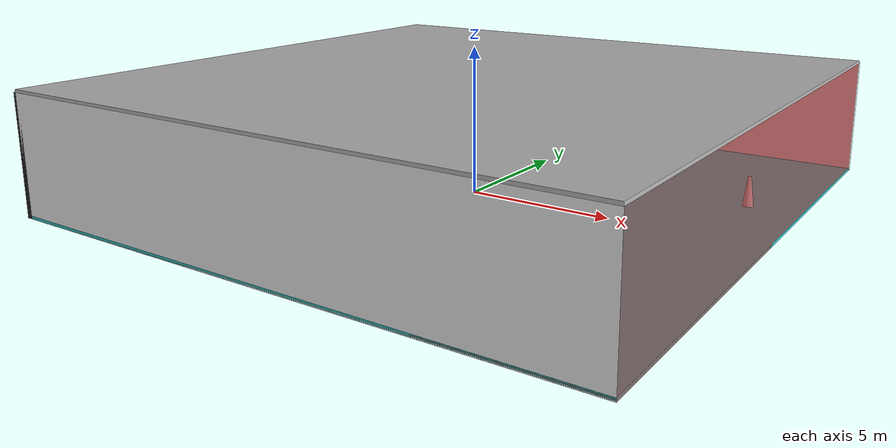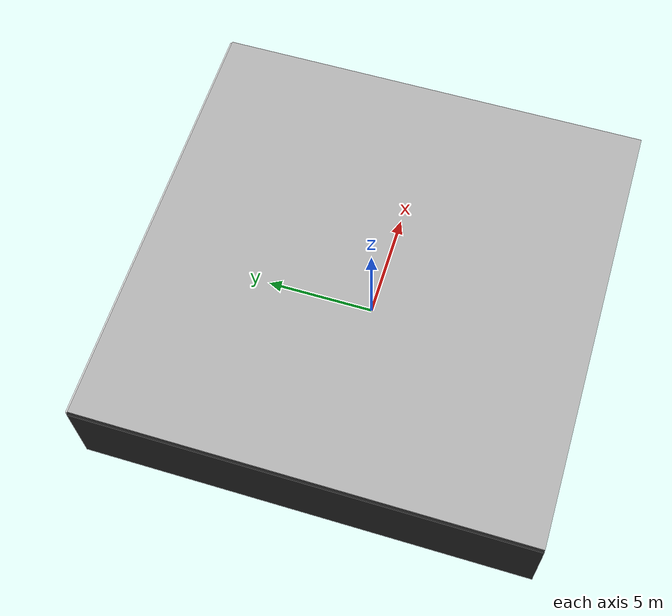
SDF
<sdf version="1.4">
 <world name="default">
  <physics type="ode">
   <max_step_size>0.001</max_step_size>
   <real_time_factor>1</real_time_factor>
   <real_time_update_rate>1000</real_time_update_rate>
   <gravity>0 0 -9.8</gravity>
  </physics>
  <scene><ambient>0.4 0.4 0.4 1</ambient><background>0.7 0.7 0.7 1</background><shadows>1</shadows></scene>
  <model name="Surrounding">
   <static>1</static>
   <link name="Ceiling">
    <collision name="Ceiling_Collision"><geometry><box><size>20 20 0.1</size></box></geometry></collision>
    <visual name="Ceiling_Visual">
     <geometry><box><size>20 20 0.1</size></box></geometry>
     <material>
      <script><uri>file://media/materials/scripts/gazebo.material</uri><name>Gazebo/Pioneer2Body</name></script>
     </material>
    </visual>
    <pose>0 0 4.05 0 0 0</pose>
   </link>
   <link name="Wall_South">
    <collision name="Wall_South_Collision">
     <geometry><box><size>20 0 4</size></box></geometry>
     <pose>0 0 2 0 -0 0</pose>
    </collision>
    <visual name="Wall_South_Visual">
     <pose>0 0 2 0 -0 0</pose>
     <geometry><box><size>20 0 4</size></box></geometry>
     <material>
      <script><uri>file://media/materials/scripts/gazebo.material</uri><name>Gazebo/WhiteGlow</name></script>
     </material>
    </visual>
    <velocity_decay><linear>0</linear><angular>0</angular></velocity_decay>
    <pose>0 -10 0 0 -0 0</pose>
   </link>
   <link name="Wall_East">
    <collision name="Wall_21_Collision">
     <geometry><box><size>20 0 4</size></box></geometry>
     <pose>0 0 2 0 -0 0</pose>
    </collision>
    <visual name="Wall_21_Visual">
     <pose>0 0 2 0 -0 0</pose>
     <geometry><box><size>20 0 4</size></box></geometry>
     <material>
      <script><uri>file://media/materials/scripts/gazebo.material</uri><name>Gazebo/RedTransparent</name></script>
     </material>
    </visual>
    <velocity_decay><linear>0</linear><angular>0</angular></velocity_decay>
    <pose>10 0 0 0 -0 1.5708</pose>
   </link>
   <link name="Wall_North">
    <collision name="Wall_22_Collision">
     <geometry><box><size>20 0.2 4</size></box></geometry>
     <pose>0 0 2 0 -0 0</pose>
    </collision>
    <visual name="Wall_22_Visual">
     <pose>0 0 2 0 -0 0</pose>
     <geometry><box><size>20 0.2 4</size></box></geometry>
     <material>
      <script><uri>file://media/materials/scripts/gazebo.material</uri><name>Gazebo/WhiteGlow</name></script>
     </material>
    </visual>
    <velocity_decay><linear>0</linear><angular>0</angular></velocity_decay>
    <pose>0 10 0 0 -0 0</pose>
   </link>
   <link name="Wall_West">
    <collision name="Wall_23_Collision">
     <geometry><box><size>20 0.2 4</size></box></geometry>
     <pose>0 0 2 0 -0 0</pose>
    </collision>
    <visual name="Wall_23_Visual">
     <pose>0 0 2 0 -0 0</pose>
     <geometry><box><size>20 0.2 4</size></box></geometry>
     <material>
      <script><uri>file://media/materials/scripts/gazebo.material</uri><name>Gazebo/Black</name></script>
     </material>
    </visual>
    <velocity_decay><linear>0</linear><angular>0</angular></velocity_decay>
    <pose>-10 0 0 0 0 -1.5708</pose>
   </link>
   <link name="Ground_link">
    <collision name="collision">
     <pose>0 0 .05 0 -0 0</pose>
     <geometry><box><size>20 20 0.1</size></box></geometry>
    </collision>
    <visual name="visual">
     <pose>0 0 .05 0 -0 0</pose>
     <geometry><box><size>20 20 0.1</size></box></geometry>
     <material>
      <script><uri>file://media/materials/scripts/gazebo.material</uri><name>Gazebo/Turquoise</name></script>
     </material>
    </visual>
   </link>
   <static>1</static>
  </model>
  <spherical_coordinates>
   <surface_model>EARTH_WGS84</surface_model>
   <latitude_deg>0</latitude_deg>
   <longitude_deg>0</longitude_deg>
   <elevation>0</elevation>
   <heading_deg>0</heading_deg>
  </spherical_coordinates>
  <light name="lightball_0" type="diffuse">
   <diffuse>0.8 0.8 0.8 1</diffuse>
   <specular>0.2 0.2 0.2 1</specular>
   <attenuation>
    <range>100</range>
    <constant>0.7</constant>
    <linear>0.01</linear>
    <quadratic>0.001</quadratic>
   </attenuation>
   <direction>-0.5 0.1 -0.9</direction>
   <pose>5.84981699702 2.52299114824 1.17164686058 0 0 0</pose>
  </light>
  <light name="lightball_1" type="diffuse">
   <diffuse>0.8 0.8 0.8 1</diffuse>
   <specular>0.2 0.2 0.2 1</specular>
   <attenuation>
    <range>100</range>
    <constant>0.7</constant>
    <linear>0.01</linear>
    <quadratic>0.001</quadratic>
   </attenuation>
   <direction>-0.5 0.1 -0.9</direction>
   <pose>1.41247615391 6.1457489419 2.65353713141 0 0 0</pose>
  </light>
  <light name="lightball_2" type="diffuse">
   <diffuse>0.8 0.8 0.8 1</diffuse>
   <specular>0.2 0.2 0.2 1</specular>
   <attenuation>
    <range>100</range>
    <constant>0.7</constant>
    <linear>0.01</linear>
    <quadratic>0.001</quadratic>
   </attenuation>
   <direction>-0.5 0.1 -0.9</direction>
   <pose>4.50450357683 -4.56632048689 1.71623090656 0 0 0</pose>
  </light>
  <include>
   <uri>model://textured_shapes</uri>
   <pose>-6.69231469914 -2.37593322108 0 0 0 0.677218179703</pose>
  </include>
  <include>
   <uri>model://construction_cone</uri>
   <pose>-6.64892291892 4.89437731163 0 0 0 0.17686598729</pose>
  </include>
  <include><uri>model://cabinet</uri><pose>-4.41244604144 3.95913152304 0 0 0 0.185404287899</pose></include>
  <include>
   <uri>model://textured_shapes</uri>
   <pose>1.55764011312 -3.85240940002 0 0 0 0.30736974765</pose>
  </include>
  <include>
   <uri>model://construction_cone</uri>
   <pose>8.30730657161 3.41461839075 0 0 0 1.23631931411</pose>
  </include>
 </world>
</sdf>

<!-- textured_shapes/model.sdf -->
<sdf version="1.6">
  <model name="textured_shapes">
    <pose>0 0 0.5 0 0 0</pose>
    <link name="box">
      <pose>0 -1.5 0 0 0 0</pose>
      <collision name="collision">
        <geometry>
          <box>
            <size>1 1 1</size>
          </box>
        </geometry>
      </collision>
      <visual name="visual">
        <geometry>
          <box>
            <size>1 1 1</size>
          </box>
        </geometry>
        <material>
          <script>
            <uri>model://../model_source/models/textured_shapes/materials/scripts</uri>
            <uri>model://../model_source/models/textured_shapes/materials/textures</uri>
            <name>TexturedShape/Squares</name>
          </script>
        </material>
      </visual>
    </link>
    <link name="sphere">
      <collision name="collision">
        <geometry>
          <sphere>
            <radius>0.5</radius>
          </sphere>
        </geometry>
      </collision>
      <visual name="visual">
        <geometry>
          <sphere>
            <radius>0.5</radius>
          </sphere>
        </geometry>
        <material>
          <script>
            <uri>model://../model_source/models/textured_shapes/materials/scripts</uri>
            <uri>model://../model_source/models/textured_shapes/materials/textures</uri>
            <name>TexturedShape/Squares</name>
          </script>
        </material>
      </visual>
    </link>
    <link name="cylinder">
      <pose>0 1.5 0 0 0 0</pose>
      <collision name="collision">
        <geometry>
          <cylinder>
            <radius>0.5</radius>
            <length>1</length>
          </cylinder>
        </geometry>
      </collision>
      <visual name="visual">
        <geometry>
          <cylinder>
            <radius>0.5</radius>
            <length>1</length>
          </cylinder>
        </geometry>
        <material>
          <script>
            <uri>model://../model_source/models/textured_shapes/materials/scripts</uri>
            <uri>model://../model_source/models/textured_shapes/materials/textures</uri>
            <name>TexturedShape/Squares</name>
          </script>
        </material>
      </visual>
    </link>
  </model>
</sdf>

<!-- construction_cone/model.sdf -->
<sdf version="1.5">
  <model name="Construction Cone">
    <link name="link">
      <collision name="collision">
        <geometry>
          <mesh>
            <scale>10 10 10</scale>
            <uri>file://isr-testbed/construction_cone/meshes/construction_cone.dae</uri>
          </mesh>
        </geometry>
      </collision>
      <visual name="visual">
        <geometry>
          <mesh>
            <scale>10 10 10</scale>
            <uri>file://isr-testbed/construction_cone/meshes/construction_cone.dae</uri>
          </mesh>
        </geometry>
      </visual>
    </link>
  </model>
</sdf>

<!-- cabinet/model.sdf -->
<sdf version="1.5">
  <model name="cabinet">
    <static>true</static>
    <link name="cabinet_bottom_plate">
      <inertial>
        <pose>0 0 -1 0 0 0</pose>
        <inertia>
          <ixx>2.050000</ixx>
          <ixy>0</ixy>
          <ixz>0</ixz>
          <iyy>2.050000</iyy>
          <iyz>0</iyz>
          <izz>2.050000</izz>
        </inertia>
        <mass>25.000000</mass>
      </inertial>
      <collision name="cabinet_bottom_plate_geom">
        <pose>0 0 0.010000 0 0 0</pose>
        <geometry>
          <box>
            <size>0.450000 0.450000 0.020000</size>
          </box>
        </geometry>
      </collision>
      <visual name="cabinet_bottom_plate_geom_visual">
        <pose>0 0 0.010000 0 0 0</pose>
        <geometry>
          <box>
            <size>0.450000 0.450000 0.020000</size>
          </box>
        </geometry>
        <material>
          <script>
            <uri>model://media/materials/scripts/gazebo.material</uri>
            <name>Gazebo/Wood</name>
          </script>
        </material>
      </visual>
      <collision name="cabinet_bottom_plate_geom_cabinet_back_plate">
        <pose>0.235000 0 0.510000 0 0 0</pose>
        <geometry>
          <box>
            <size>0.020000 0.450000 1.020000</size>
          </box>
        </geometry>
      </collision>
      <visual name="cabinet_bottom_plate_geom_cabinet_back_plate_visual">
        <pose>0.235000 0 0.510000 0 0 0</pose>
        <geometry>
          <box>
            <size>0.020000 0.450000 1.020000</size>
          </box>
        </geometry>
        <material>
          <script>
            <uri>model://media/materials/scripts/gazebo.material</uri>
            <name>Gazebo/Wood</name>
          </script>
        </material>
      </visual>
      <collision name="cabinet_bottom_plate_geom_cabinet_left_plate">
        <pose>0 0.235000 0.510000 0 0 0</pose>
        <geometry>
          <box>
            <size>0.450000 0.020000 1.020000</size>
          </box>
        </geometry>
      </collision>
      <visual name="cabinet_bottom_plate_geom_cabinet_left_plate_visual">
        <pose>0 0.235000 0.510000 0 0 0</pose>
        <geometry>
          <box>
            <size>0.450000 0.020000 1.020000</size>
          </box>
        </geometry>
        <material>
          <script>
            <uri>model://media/materials/scripts/gazebo.material</uri>
            <name>Gazebo/Wood</name>
          </script>
        </material>
      </visual>
      <collision name="cabinet_bottom_plate_geom_cabinet_middle_plate">
        <pose>0 0 0.510000 0 0 0</pose>
        <geometry>
          <box>
            <size>0.450000 0.450000 0.020000</size>
          </box>
        </geometry>
      </collision>
      <visual name="cabinet_bottom_plate_geom_cabinet_middle_plate_visual">
        <pose>0 0 0.510000 0 0 0</pose>
        <geometry>
          <box>
            <size>0.450000 0.450000 0.020000</size>
          </box>
        </geometry>
        <material>
          <script>
            <uri>model://media/materials/scripts/gazebo.material</uri>
            <name>Gazebo/Wood</name>
          </script>
        </material>
      </visual>
      <collision name="cabinet_bottom_plate_geom_cabinet_right_plate">
        <pose>0 -0.235000 0.510000 0 0 0</pose>
        <geometry>
          <box>
            <size>0.450000 0.020000 1.020000</size>
          </box>
        </geometry>
      </collision>
      <visual name="cabinet_bottom_plate_geom_cabinet_right_plate_visual">
        <pose>0 -0.235000 0.510000 0 0 0</pose>
        <geometry>
          <box>
            <size>0.450000 0.020000 1.020000</size>
          </box>
        </geometry>
        <material>
          <script>
            <uri>model://media/materials/scripts/gazebo.material</uri>
            <name>Gazebo/Wood</name>
          </script>
        </material>
      </visual>
      <collision name="cabinet_bottom_plate_geom_cabinet_top_plate">
        <pose>0 0 1.010000 0 0 0</pose>
        <geometry>
          <box>
            <size>0.450000 0.450000 0.020000</size>
          </box>
        </geometry>
      </collision>
      <visual name="cabinet_bottom_plate_geom_cabinet_top_plate_visual">
        <pose>0 0 1.010000 0 0 0</pose>
        <geometry>
          <box>
            <size>0.450000 0.450000 0.020000</size>
          </box>
        </geometry>
        <material>
          <script>
            <uri>model://media/materials/scripts/gazebo.material</uri>
            <name>Gazebo/Wood</name>
          </script>
        </material>
      </visual>
    </link>
  </model>
</sdf>
